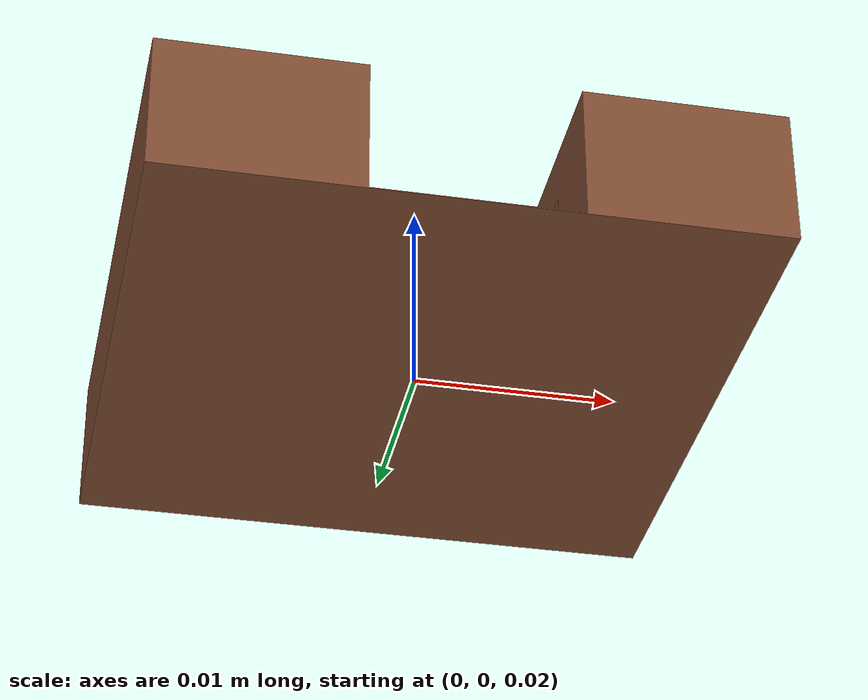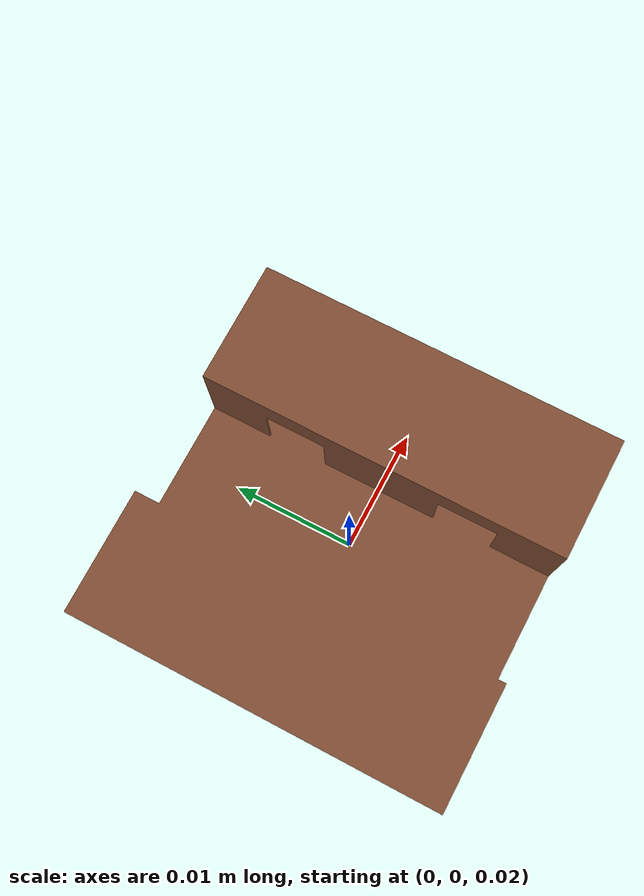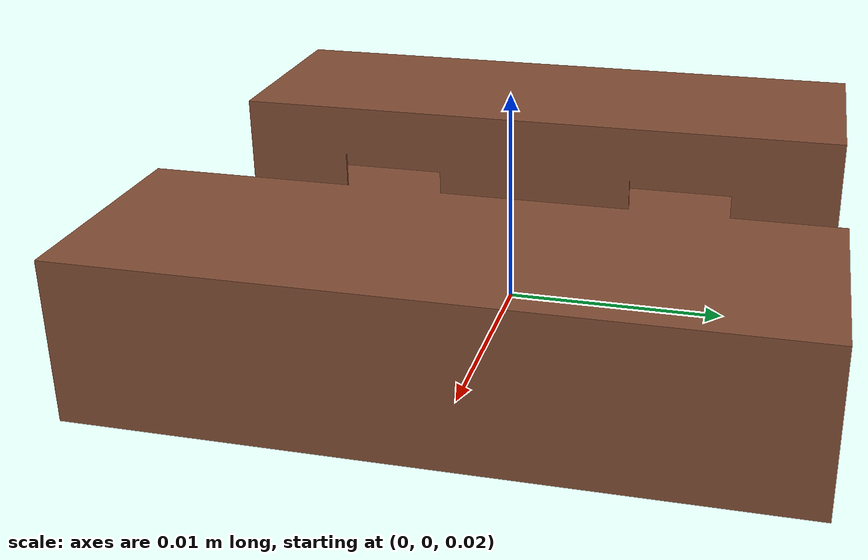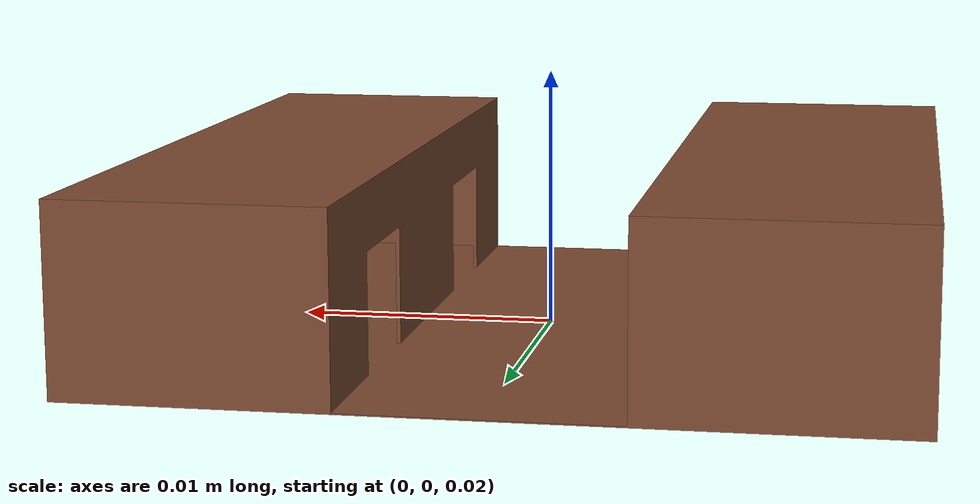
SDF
<?xml version="1.0"?>
<sdf version="1.7">
  <model name="my_world_model">
        <pose>0.0 -0.0 0.02 0.0 0.0 0.0</pose>
    <static>true</static>
    <link name="link">
      <visual name="visual">
        <geometry>
          <mesh>
            <uri>model:///bmstu/ros2_ws/src/main/models/my_world_model/meshes/World.obj</uri>
            <scale>0.001 0.001 0.001</scale>
          </mesh>

        </geometry>
                  <material>
            <ambient>0.8 0.8 0.8 1</ambient>
            <diffuse>0.5 0.3 0.2 1</diffuse>
            <specular>0.8 0.8 0.8 1</specular>

          </material>
      </visual>
      <collision name="collision">
        <geometry>
          <mesh>
            <uri>model:///bmstu/ros2_ws/src/main/models/my_world_model/meshes/World.obj</uri>
            <scale>0.001 0.001 0.001</scale>
          </mesh>
        </geometry>
      </collision>
    </link>
  </model>
</sdf>
